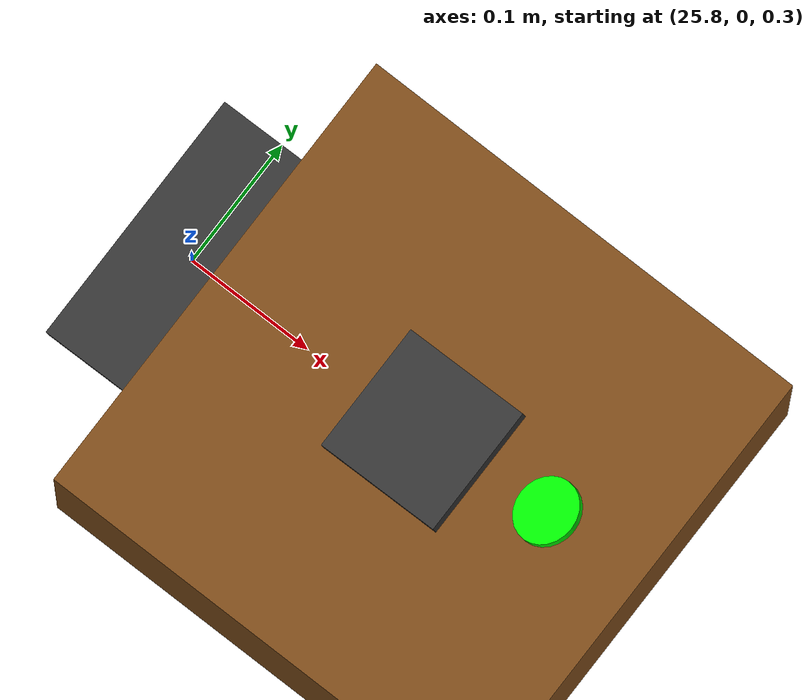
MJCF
<mujoco model="place">
    <!--option timestep="0.002" gravity="0 0 -9.81" integrator="implicitfast"
        density="1.225" viscosity="1.8e-5"/-->
    <asset>
        <!--mesh name="base.STL" file="STL/base.STL" /-->
        <material name="mat_red" rgba="1 0 0 1"/>
        <material name="mat_green" rgba="0 1 0 1" emission="0.8"/>
        <material name="mat_white" rgba="1 1 1 1"/>
        <!--mesh name="qsz.STL" file="STL/qsz.STL" /-->
    </asset>

    <worldbody>
        <!-- 地平面 -->
        <geom name="floor" type="plane" size="100 100 0.1" rgba="1 1 1 1"/>

        <!-- 起始点：红色立方体（正方形） -->
        <!-- 高度0.1m，边长0.4m -->
        <body name="place_missile_shelf" pos="0 0 0">
            <geom type="box" size="0.2 0.2 0.05" material="mat_red"/>
        </body>

        <!-- 指示线（水平白线） -->
        <body name="place_direction_line"
            pos="13 0 -0.5"
            euler="0 90 0">   <!-- 绕Y轴旋转90°，圆柱水平沿X -->
            <geom type="cylinder" size="0.01 13" material="mat_white"/>
        </body>

        <!-- 基地 -->
        <body name="place_base" pos="26 0 0.2">
            <!-- 基地 -->
            <geom type="box" size="0.18 0.18 0.18" rgba="0.5 0.3 0.1 1"/>
            <!--基地大装甲板-->
            <body name="place_base_42mm_armor" pos="-0.2 0 0.1" euler="0 -15 0">
                <geom type="box" size="0.05 0.1 0.005" rgba="0.2 0.2 0.2 1"/>
            </body>
            <!-- 倾斜顶部目标 -->
            <body name="place_base_armor" pos="0 0 0.2" euler="0 -15 0">
                <joint name="base_armor_y_joint" type="slide" axis="0 1 0" range="-0.5 0.5"/>
                <geom type="box" size="0.05 0.05 0.005" rgba="0.2 0.2 0.2 1"/>
                <!-- 基地灯（后方0.05m，上方0.05m） -->
                <body name="place_base_light" pos="0.15 0 0.15" euler="0 -15 0">
                    <geom type="cylinder" size="0.025 0.0025" material="mat_green"/>
                </body>
            </body>

        </body>

        <!-- 前哨站 -->
    </worldbody>
</mujoco>
